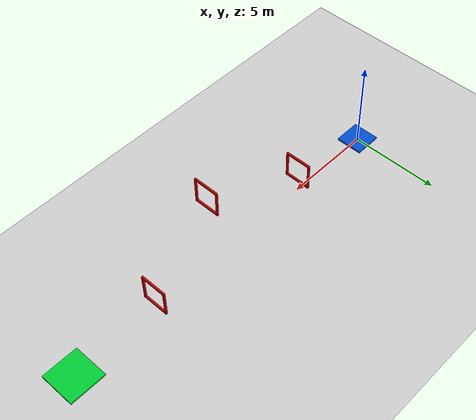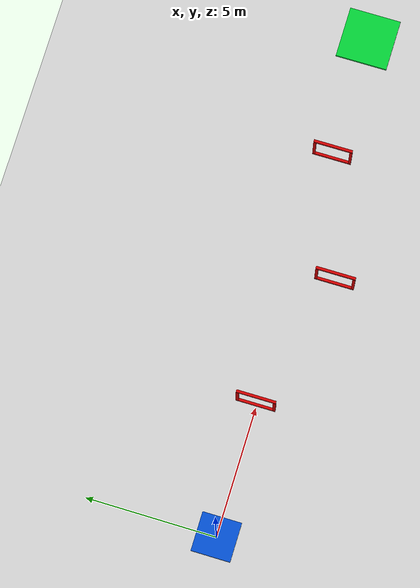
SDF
<?xml version="1.0" encoding="UTF-8"?>
<sdf version="1.9">
  <world name="tf_circuito_aros">
    <physics type="ode">
      <max_step_size>0.004</max_step_size>
      <real_time_factor>1.0</real_time_factor>
      <real_time_update_rate>250</real_time_update_rate>
    </physics>
    <gravity>0 0 -9.8</gravity>
    <magnetic_field>6e-06 2.3e-05 -4.2e-05</magnetic_field>
    <atmosphere type="adiabatic"/>
    <scene>
      <grid>false</grid>
      <ambient>0.4 0.4 0.4 1</ambient>
      <background>0.7 0.7 0.7 1</background>
      <shadows>true</shadows>
    </scene>
    <model name="ground_plane">
      <static>true</static>
      <link name="link">
        <collision name="collision">
          <geometry>
            <plane>
              <normal>0 0 1</normal>
              <size>1 1</size>
            </plane>
          </geometry>
          <surface>
            <friction>
              <ode/>
            </friction>
            <bounce/>
            <contact/>
          </surface>
        </collision>
        <visual name="visual">
          <geometry>
            <plane>
              <normal>0 0 1</normal>
              <size>500 500</size>
            </plane>
          </geometry>
          <material>
            <ambient>0.8 0.8 0.8 1</ambient>
            <diffuse>0.8 0.8 0.8 1</diffuse>
            <specular>0.8 0.8 0.8 1</specular>
          </material>
        </visual>
        <pose>0 0 0 0 -0 0</pose>
        <inertial>
          <pose>0 0 0 0 -0 0</pose>
          <mass>1</mass>
          <inertia>
            <ixx>1</ixx>
            <ixy>0</ixy>
            <ixz>0</ixz>
            <iyy>1</iyy>
            <iyz>0</iyz>
            <izz>1</izz>
          </inertia>
        </inertial>
        <enable_wind>false</enable_wind>
      </link>
      <pose>0 0 0 0 -0 0</pose>
      <self_collide>false</self_collide>
    </model>
    <light name="sunUTC" type="directional">
      <pose>0 0 500 0 -0 0</pose>
      <cast_shadows>true</cast_shadows>
      <intensity>1</intensity>
      <direction>0.001 0.625 -0.78</direction>
      <diffuse>0.904 0.904 0.904 1</diffuse>
      <specular>0.271 0.271 0.271 1</specular>
      <attenuation>
        <range>2000</range>
        <linear>0</linear>
        <constant>1</constant>
        <quadratic>0</quadratic>
      </attenuation>
      <spot>
        <inner_angle>0</inner_angle>
        <outer_angle>0</outer_angle>
        <falloff>0</falloff>
      </spot>
    </light>
    <spherical_coordinates>
      <surface_model>EARTH_WGS84</surface_model>
      <world_frame_orientation>ENU</world_frame_orientation>
      <latitude_deg>47.397971057728974</latitude_deg>
      <longitude_deg> 8.546163739800146</longitude_deg>
      <elevation>0</elevation>
    </spherical_coordinates>
    <!-- Plataforma de Salida (Azul) -->
    <model name="plataforma_salida">
      <static>true</static>
      <pose>0 0 0.05 0 0 0</pose>
      <link name="link">
        <collision name="col"><geometry><box><size>1.5 1.5 0.1</size></box></geometry></collision>
        <visual name="vis">
          <geometry><box><size>1.5 1.5 0.1</size></box></geometry>
          <material><ambient>0 0.3 0.8 1</ambient><diffuse>0 0.3 0.8 1</diffuse></material>
        </visual>
      </link>
    </model>

<!-- Aro 1: Recto (Puerta Cuadrada) -->
    <model name="aro_1">
      <static>true</static>
      <!-- Posición central de la puerta -->
      <pose>5 0 1.5 0 0 0</pose>
      <link name="link">
        <!-- Barra Superior -->
        <visual name="top_v"><pose>0 0 0.75 0 0 0</pose><geometry><box><size>0.1 1.5 0.1</size></box></geometry><material><ambient>0.8 0 0 1</ambient><diffuse>0.8 0 0 1</diffuse></material></visual>
        <collision name="top_c"><pose>0 0 0.75 0 0 0</pose><geometry><box><size>0.1 1.5 0.1</size></box></geometry></collision>
        <!-- Barra Inferior -->
        <visual name="bot_v"><pose>0 0 -0.75 0 0 0</pose><geometry><box><size>0.1 1.5 0.1</size></box></geometry><material><ambient>0.8 0 0 1</ambient><diffuse>0.8 0 0 1</diffuse></material></visual>
        <collision name="bot_c"><pose>0 0 -0.75 0 0 0</pose><geometry><box><size>0.1 1.5 0.1</size></box></geometry></collision>
        <!-- Pilar Izquierdo -->
        <visual name="left_v"><pose>0 0.7 0 0 0 0</pose><geometry><box><size>0.1 0.1 1.4</size></box></geometry><material><ambient>0.8 0 0 1</ambient><diffuse>0.8 0 0 1</diffuse></material></visual>
        <collision name="left_c"><pose>0 0.7 0 0 0 0</pose><geometry><box><size>0.1 0.1 1.4</size></box></geometry></collision>
        <!-- Pilar Derecho -->
        <visual name="right_v"><pose>0 -0.7 0 0 0 0</pose><geometry><box><size>0.1 0.1 1.4</size></box></geometry><material><ambient>0.8 0 0 1</ambient><diffuse>0.8 0 0 1</diffuse></material></visual>
        <collision name="right_c"><pose>0 -0.7 0 0 0 0</pose><geometry><box><size>0.1 0.1 1.4</size></box></geometry></collision>
      </link>
    </model>

    <!-- Aro 2: Elevado y a la derecha -->
    <model name="aro_2">
      <static>true</static>
      <pose>10 -1.5 2.5 0 0 0</pose>
      <link name="link">
        <visual name="top_v"><pose>0 0 0.75 0 0 0</pose><geometry><box><size>0.1 1.5 0.1</size></box></geometry><material><ambient>0.8 0 0 1</ambient><diffuse>0.8 0 0 1</diffuse></material></visual>
        <collision name="top_c"><pose>0 0 0.75 0 0 0</pose><geometry><box><size>0.1 1.5 0.1</size></box></geometry></collision>
        <visual name="bot_v"><pose>0 0 -0.75 0 0 0</pose><geometry><box><size>0.1 1.5 0.1</size></box></geometry><material><ambient>0.8 0 0 1</ambient><diffuse>0.8 0 0 1</diffuse></material></visual>
        <collision name="bot_c"><pose>0 0 -0.75 0 0 0</pose><geometry><box><size>0.1 1.5 0.1</size></box></geometry></collision>
        <visual name="left_v"><pose>0 0.7 0 0 0 0</pose><geometry><box><size>0.1 0.1 1.4</size></box></geometry><material><ambient>0.8 0 0 1</ambient><diffuse>0.8 0 0 1</diffuse></material></visual>
        <collision name="left_c"><pose>0 0.7 0 0 0 0</pose><geometry><box><size>0.1 0.1 1.4</size></box></geometry></collision>
        <visual name="right_v"><pose>0 -0.7 0 0 0 0</pose><geometry><box><size>0.1 0.1 1.4</size></box></geometry><material><ambient>0.8 0 0 1</ambient><diffuse>0.8 0 0 1</diffuse></material></visual>
        <collision name="right_c"><pose>0 -0.7 0 0 0 0</pose><geometry><box><size>0.1 0.1 1.4</size></box></geometry></collision>
      </link>
    </model>

    <!-- Aro 3: Bajo y centrado -->
    <model name="aro_3">
      <static>true</static>
      <pose>15 0 1.0 0 0 0</pose>
      <link name="link">
        <visual name="top_v"><pose>0 0 0.75 0 0 0</pose><geometry><box><size>0.1 1.5 0.1</size></box></geometry><material><ambient>0.8 0 0 1</ambient><diffuse>0.8 0 0 1</diffuse></material></visual>
        <collision name="top_c"><pose>0 0 0.75 0 0 0</pose><geometry><box><size>0.1 1.5 0.1</size></box></geometry></collision>
        <visual name="bot_v"><pose>0 0 -0.75 0 0 0</pose><geometry><box><size>0.1 1.5 0.1</size></box></geometry><material><ambient>0.8 0 0 1</ambient><diffuse>0.8 0 0 1</diffuse></material></visual>
        <collision name="bot_c"><pose>0 0 -0.75 0 0 0</pose><geometry><box><size>0.1 1.5 0.1</size></box></geometry></collision>
        <visual name="left_v"><pose>0 0.7 0 0 0 0</pose><geometry><box><size>0.1 0.1 1.4</size></box></geometry><material><ambient>0.8 0 0 1</ambient><diffuse>0.8 0 0 1</diffuse></material></visual>
        <collision name="left_c"><pose>0 0.7 0 0 0 0</pose><geometry><box><size>0.1 0.1 1.4</size></box></geometry></collision>
        <visual name="right_v"><pose>0 -0.7 0 0 0 0</pose><geometry><box><size>0.1 0.1 1.4</size></box></geometry><material><ambient>0.8 0 0 1</ambient><diffuse>0.8 0 0 1</diffuse></material></visual>
        <collision name="right_c"><pose>0 -0.7 0 0 0 0</pose><geometry><box><size>0.1 0.1 1.4</size></box></geometry></collision>
      </link>
    </model>

    <!-- Plataforma de Llegada (Verde) -->
    <model name="plataforma_llegada">
      <static>true</static>
      <pose>20 0 0.05 0 0 0</pose>
      <link name="link">
        <collision name="col"><geometry><box><size>2.0 2.0 0.1</size></box></geometry></collision>
        <visual name="vis">
          <geometry><box><size>2.0 2.0 0.1</size></box></geometry>
          <material><ambient>0 0.8 0.2 1</ambient><diffuse>0 0.8 0.2 1</diffuse></material>
        </visual>
      </link>
    </model>
  </world>
</sdf>
